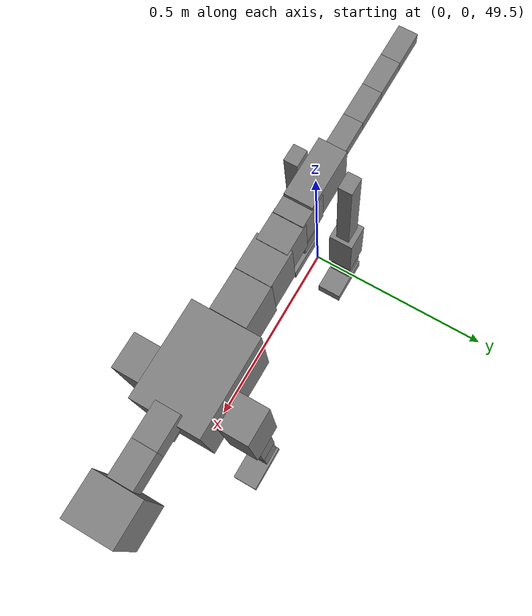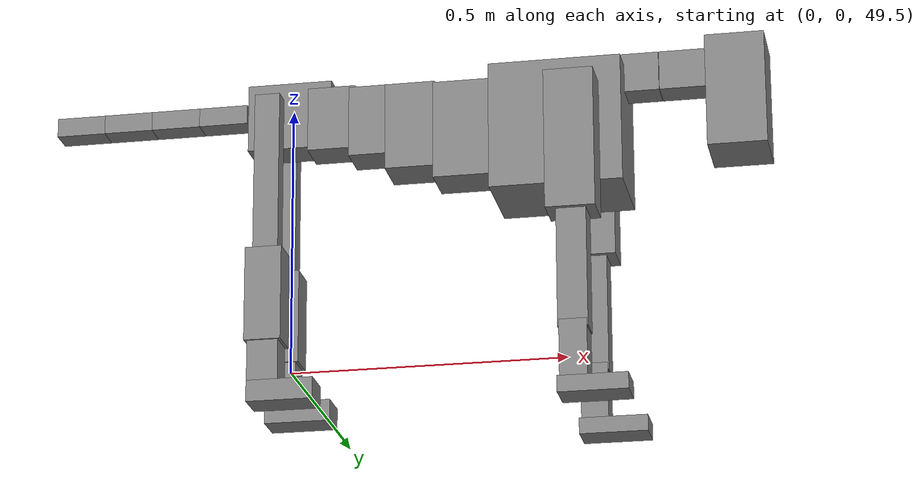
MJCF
<mujoco model="dog">

    <default>
        <joint armature="0.02" stiffness="1" damping="0.2" limited="true"/>
        <geom condim="3" friction="1 0.05 0.05" margin="0.01"/>
        <motor ctrllimited="true" ctrlrange="-1.0 1.0" forcelimited="true" gear="50"/>
    </default>

    <compiler inertiafromgeom="true" angle="radian"/>

    <option timestep="0.016" iterations="50" tolerance="1e-10" solver="Newton" jacobian="dense" cone="pyramidal"/>

    <size nconmax="20000" njmax="60000" nstack="5000000"/>
    <visual>
        <map force="0.1" zfar="30"/>
        <rgba haze="0.15 0.25 0.35 1"/>
        <quality shadowsize="2048"/>
        <global offwidth="800" offheight="800"/>
    </visual>

    <asset>
        <texture type="skybox" builtin="gradient" rgb1="0.3 0.5 0.7" rgb2="0 0 0" width="512" height="512"/>
        <texture name="texplane" type="2d" builtin="checker" rgb1=".2 .3 .4" rgb2=".1 0.15 0.2" width="512" height="512"
                 mark="cross" markrgb=".8 .8 .8"/>
        <texture name="texgeom" type="cube" builtin="flat" mark="cross" width="127" height="1278" rgb1="0.8 0.6 0.4"
                 rgb2="0.8 0.6 0.4" markrgb="1 1 1" random="0.01"/>

        <material name="matplane" reflectance="0.3" texture="texplane" texrepeat="1 1" texuniform="true"/>
        <material name="matgeom" texture="texgeom" texuniform="true" rgba="0.8 0.6 .4 1"/>
    </asset>

    <worldbody>
        <geom name="floor" pos="0 0 0" size="0 0 .25" type="plane" material="matplane" condim="3"/>

        <light directional="false" diffuse=".2 .2 .2" specular="0 0 0" pos="0 0 5" dir="0 0 -1" castshadow="false"/>
        <light mode="targetbodycom" target="torso" directional="false" diffuse=".8 .8 .8" specular="0.3 0.3 0.3"
               pos="0 0 4.0" dir="0 0 -1"/>

        <body name="root" pos="0 0 50">
            <freejoint name="root_1"/>
            <geom type="box" pos="0 0 -0.02" size="0.0774  0.0358  0.063" density="2030"/>

            <body name="spine1" pos="0.054 0 0">
                <joint name="spine1_y" axis="0 1 0" range="0 0.7" limited="true"/>
                <geom type="box" pos="0.02375 0 -0.03" size="0.04375  0.0375  0.05985" density="2030"/>

                <body name="spine2" pos="0.0612 0 0">
                    <joint name="spine2_y" axis="0 1 0" range="-0.15 0.15" limited="true"/>
                    <geom type="box" pos="0.03555  0  -0.04" size="0.04055  0.039  0.06615" density="2030"/>

                    <body name="spine3" pos="0.0730 0 0">
                        <joint name="spine3_y" axis="0 1 0" range="-0.15 0.15" limited="true"/>
                        <geom type="box" pos="0.03555  0  -0.057" size="0.04555  0.0445  0.081" density="2030"/>

                        <body name="spine4" pos="0.0780 0 0">
                            <joint name="spine4_y" axis="0 1 0" range="-0.15 0.15" limited="true"/>
                            <geom type="box" pos="0.05265  0  -0.07" size="0.05265  0.045  0.09135" density="2030"/>

                            <body name="torso" pos="0.1082 0 0">
                                <joint name="torso_y" axis="0 1 0" range="-0.15 0.15" limited="true"/>
                                <geom type="box" pos="0.11925  0  -0.085" size="0.11925  0.085  0.11745"
                                      density="2030"/>

                                <body name="neck1" pos="0.2160  0   0.0180">
                                    <joint name="neck1_y" axis="0 1 0" range="-1.2  -1" limited="true"/>
                                    <geom type="box" pos="0.0423  0  0" size="0.0423  0.03  0.036" density="2325"/>

                                    <body name="neck2" pos="0.0853  0  0">
                                        <joint name="neck2_y" axis="0 1 0" range="0.1  0" limited="true"/>
                                        <geom type="box" pos="0.0423  0  0" size="0.0423  0.03  0.036" density="2325"/>

                                        <body name="head" pos="0.0853  0  0">
                                            <joint name="head_y" axis="0 1 0" range="-0.3  -0.2" limited="true"/>
                                            <geom type="box" pos="0.0531  0  -0.055" size="0.0531  0.06  0.1044"
                                                  density="4030"/>

                                        </body>
                                    </body>
                                </body>

                                <body name="front_shoulder" pos="0.156  0   -0.0480">
                                    <joint name="front_shoulder_y" axis="0 1 0" range="-1 1.5" limited="true"/>
                                    <geom type="box" pos="0 0.13 -0.1017" size="0.0439  0.0375  0.1284" density="1158"/>
                                    <geom type="box" pos="0 -0.13 -0.1017" size="0.0439  0.0375  0.1284"
                                          density="1158"/>

                                    <body name="front_elbow" pos="0  0  -0.2034">
                                        <joint name="front_elbow_y" axis="0 1 0" range="-2 0" limited="true"/>
                                        <geom type="box" pos="0 0.13 -0.1209" size="0.0264  0.0270  0.1209"
                                              density="1081"/>
                                        <geom type="box" pos="0 -0.13 -0.1209" size="0.0264  0.0270  0.1209"
                                              density="1081"/>

                                        <body name="front_wrist" pos="0  0  -0.2418">
                                            <joint name="front_wrist_y" axis="0 1 0" range="-0.2 0" limited="true"/>
                                            <geom type="box" pos="0 0.13 -0.0523" size="0.0244  0.0271  0.0654"
                                                  density="1664"/>
                                            <geom type="box" pos="0 -0.13 -0.0523" size="0.0244  0.0271  0.0654"
                                                  density="1664"/>

                                            <body name="front_finger_end" pos="0  0  -0.1045">
                                                <joint name="front_finger_y" axis="0 1 0" range="-0.4 1"
                                                       limited="true"/>
                                                <geom type="box" pos="0.0335  0.13  0.0003"
                                                      size="0.0615  0.0335  0.0147" density="1515"/>
                                                <geom type="box" pos="0.0335  -0.13  0.0003"
                                                      size="0.0615  0.0335  0.0147" density="1515"/>

                                            </body>

                                        </body>
                                    </body>
                                </body>

                            </body>
                        </body>
                    </body>
                </body>
            </body>

            <body name="back_hip" pos="-0.03 0 -0.018">
                <joint name="back_hip_y" axis="0 1 0" range="-1.5 0.3" limited="true"/>
                <geom type="box" pos="0 0.07 -0.1449" size="0.0229  0.0179  0.1677" density="1154"/>
                <geom type="box" pos="0 -0.07 -0.1449" size="0.0229  0.0179  0.1677" density="1154"/>

                <body name="back_knee" pos="0  0  -0.2899">
                    <joint name="back_knee_y" axis="0 1 0" range="0 2.8" limited="true"/>
                    <geom type="box" pos="0 0.07 -0.0709" size="0.0330  0.0325  0.0864" density="1227"/>
                    <geom type="box" pos="0 -0.07 -0.0709" size="0.0330  0.0325  0.0864" density="1227"/>

                    <body name="back_ankle" pos="0  0  -0.1417">
                        <joint name="back_ankle_y" axis="0 1 0" range="-2.2 0" limited="true"/>
                        <geom type="box" pos="0 0.07 -0.0525" size="0.0279  0.0279  0.0638" density="1284"/>
                        <geom type="box" pos="0 -0.07 -0.0525" size="0.0279  0.0279  0.0638" density="1284"/>

                        <body name="back_toe_end" pos="0  0  -0.1051">
                            <joint name="back_toe_y" axis="0 1 0" range="-0.4 1" limited="true"/>
                            <geom type="box" pos="0.0325  0.07  -0.0044" size="0.0597  0.0325  0.0194" density="1515"/>
                            <geom type="box" pos="0.0325  -0.07  -0.0044" size="0.0597  0.0325  0.0194" density="1515"/>

                        </body>
                    </body>
                </body>
            </body>

            <body name="tail1" pos="-0.074 0 -0.006">
                <joint name="tail1_y" axis="0 1 0" range="-0.2 0.2" limited="true"/>
                <geom type="box" pos="-0.0536  0  0" size="0.045  0.025  0.0175" density="1587"/>

                <body name="tail2" pos="-0.09 0 0">
                    <joint name="tail2_y" axis="0 1 0" range="-0.2 0.2" limited="true"/>
                    <geom type="box" pos="-0.0536  0  0" size="0.045  0.025  0.0175" density="1587"/>

                    <body name="tail3" pos="-0.09 0 0">
                        <joint name="tail3_y" axis="0 1 0" range="-0.2 0.2" limited="true"/>
                        <geom type="box" pos="-0.0536  0  0" size="0.045  0.025  0.0175" density="1587"/>

                        <body name="tail4" pos="-0.09 0 0">
                            <joint name="tail4_y" axis="0 1 0" range="-0.2 0.2" limited="true"/>
                            <geom type="box" pos="-0.0536  0  0" size="0.045  0.025  0.0175" density="1587"/>

                        </body>
                    </body>
                </body>
            </body>
        </body>
    </worldbody>

    <actuator>
        <motor joint="spine1_y" forcerange="-150 150     "/>
        <motor joint="spine2_y" forcerange="-150 150     "/>
        <motor joint="spine3_y" forcerange="-150 150     "/>
        <motor joint="spine4_y" forcerange="-150 150     "/>
        <motor joint="torso_y" forcerange="-150 150     "/>
        <motor joint="neck1_y" forcerange="-100 100       "/>
        <motor joint="neck2_y" forcerange="-100 100       "/>
        <motor joint="head_y" forcerange="-150 150       "/>
        <motor joint="front_shoulder_y" forcerange="-186.03 164.24"/>
        <motor joint="front_elbow_y" forcerange="-161.86 134.39"/>
        <motor joint="front_wrist_y" forcerange="-140.63 76.09"/>
        <motor joint="front_finger_y" forcerange="-79.26 59.53"/>
        <motor joint="back_hip_y" forcerange="-205.80 233.51"/>
        <motor joint="back_knee_y" forcerange="-289.99 382.77"/>
        <motor joint="back_angle_y" forcerange="-133.77 213.28"/>
        <motor joint="back_toe_y" forcerange="-43.57 136.80"/>
        <motor joint="tail1_y" forcerange="-50 50     "/>
        <motor joint="tail2_y" forcerange="-50 50     "/>
        <motor joint="tail3_y" forcerange="-50 50     "/>
        <motor joint="tail4_y" forcerange="-50 50     "/>
    </actuator>
</mujoco>
